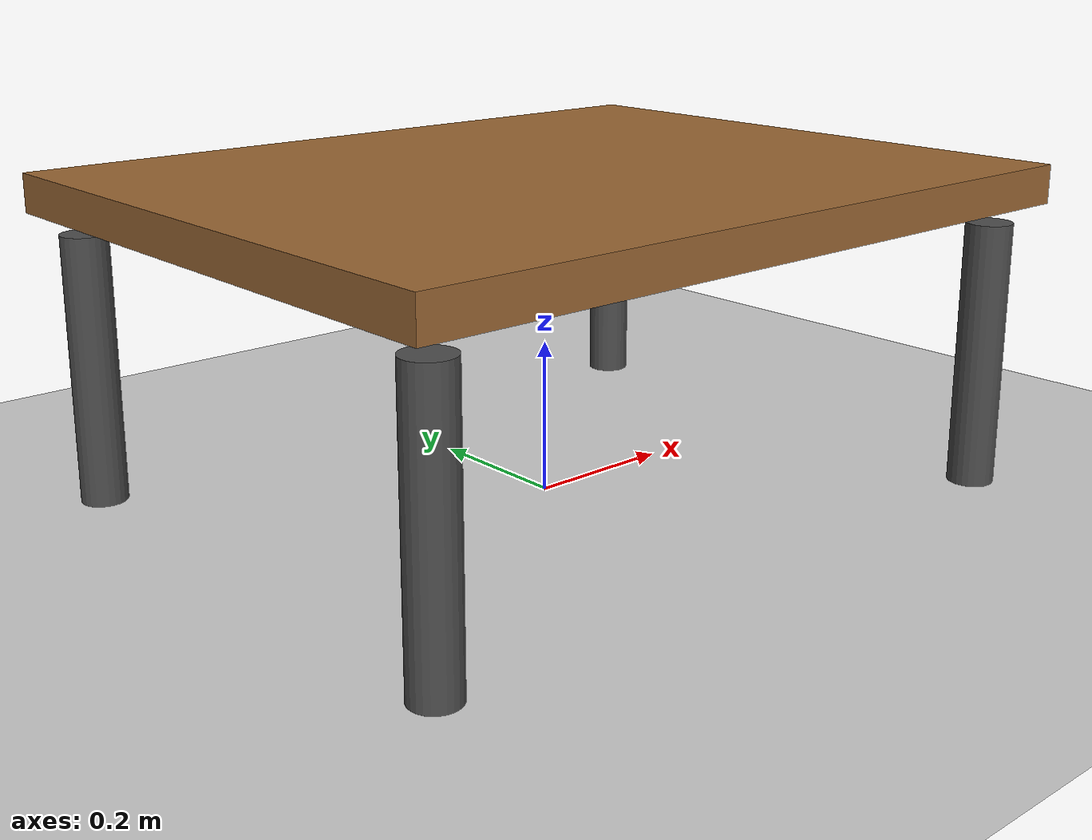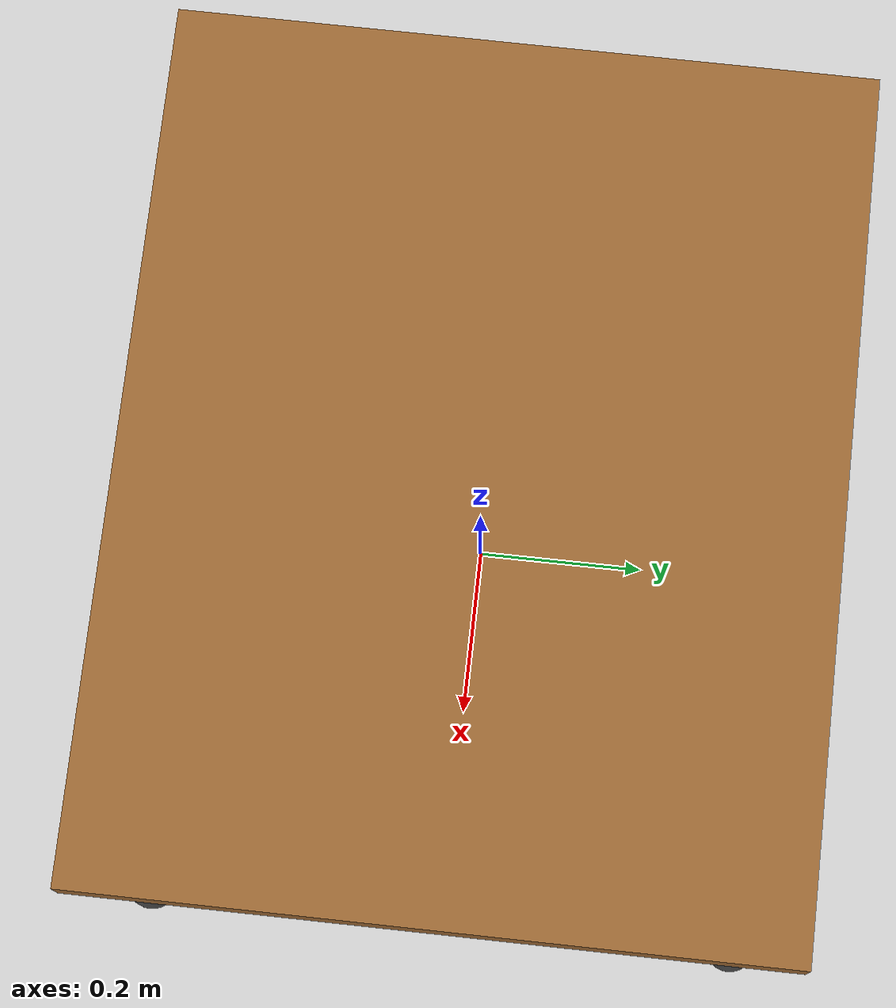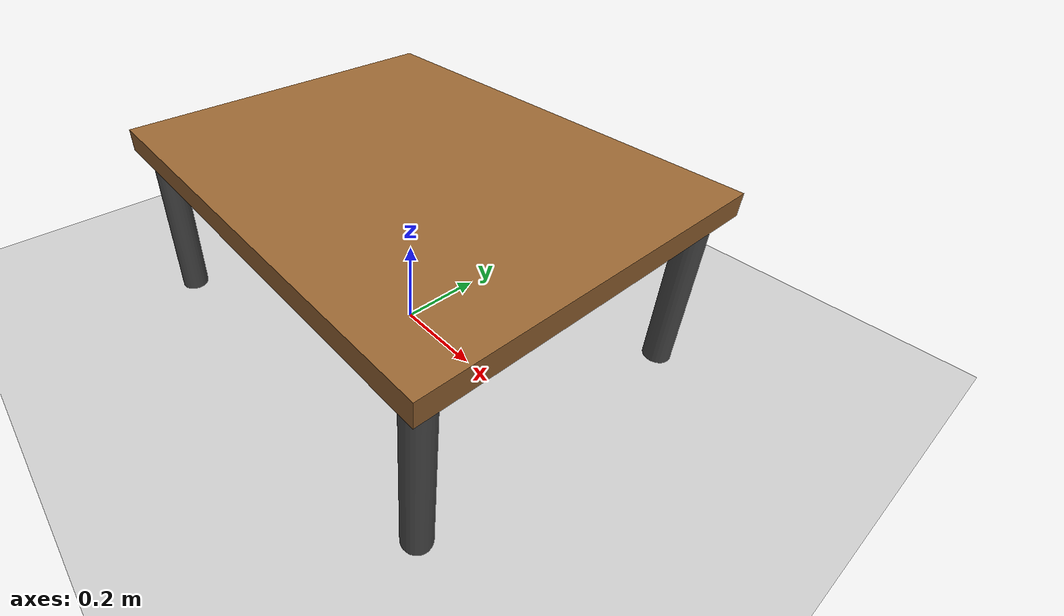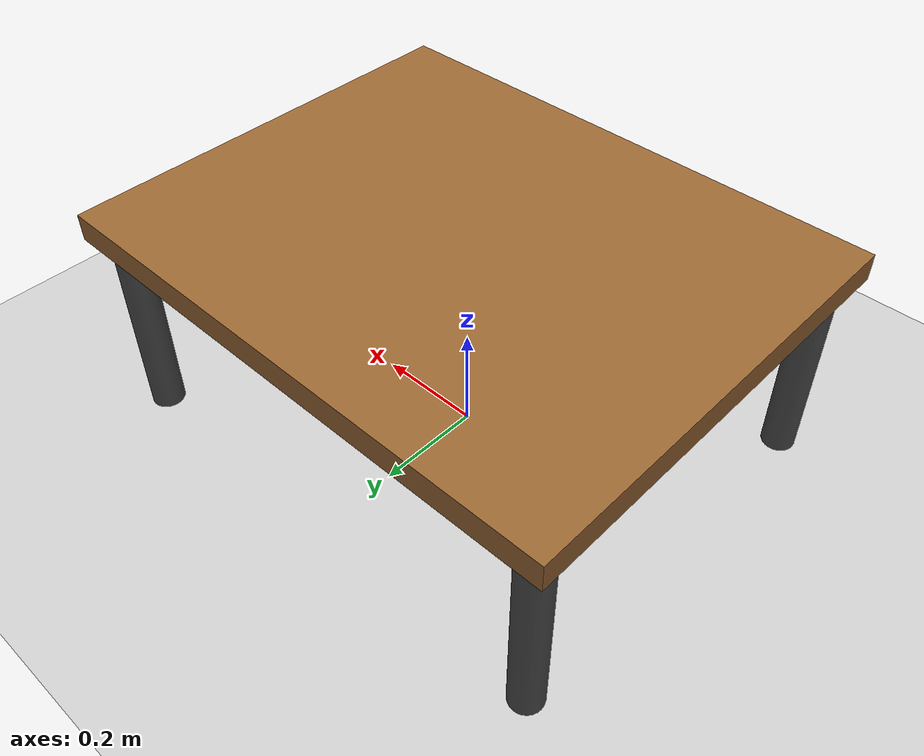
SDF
<?xml version="1.0" ?>
<sdf version="1.6">
  <world name="calibration_world">

    <!-- Physics step size matches controller update rate (100 Hz) -->
    <physics name="default_physics" default="0" type="ode">
      <max_step_size>0.01</max_step_size>
      <real_time_factor>1.0</real_time_factor>
      <real_time_update_rate>100</real_time_update_rate>
    </physics>

    <!-- Plugin for simulating physics -->
    <plugin
      filename="ignition-gazebo-physics-system"
      name="ignition::gazebo::systems::Physics">
    </plugin>

    <!-- Plugin for handling user commands -->
    <plugin
      filename="ignition-gazebo-user-commands-system"
      name="ignition::gazebo::systems::UserCommands">
    </plugin>

    <!-- Plugin for broadcasting scene updates -->
    <plugin
      filename="ignition-gazebo-scene-broadcaster-system"
      name="ignition::gazebo::systems::SceneBroadcaster">
    </plugin>

    <!-- Plugin for handling sensors like the camera -->
    <plugin
      filename="ignition-gazebo-sensors-system"
      name="ignition::gazebo::systems::Sensors">
      <render_engine>ogre2</render_engine>
    </plugin>

    <!-- Plugin for IMU -->
    <plugin
      filename="ignition-gazebo-imu-system"
      name="ignition::gazebo::systems::Imu">
    </plugin>

    <!-- Gravity -->
    <gravity>0.0 0.0 -9.8</gravity>

    <!-- Include a model of the Sun from Fuel -->
    <include>
      <uri>
        https://fuel.ignitionrobotics.org/1.0/OpenRobotics/models/Sun
      </uri>
    </include>

    <!-- Ground Plane -->
    <model name="ground_plane">
      <static>true</static>
      <link name="link">
        <collision name="collision">
          <geometry>
            <plane>
              <normal>0 0 1</normal>
            </plane>
          </geometry>
          <surface>
            <friction>
              <ode>
                <mu>100</mu>
                <mu2>50</mu2>
              </ode>
            </friction>
          </surface>
        </collision>
        <visual name="visual">
          <geometry>
            <plane>
              <normal>0 0 1</normal>
              <size>100 100</size>
            </plane>
          </geometry>
          <material>
            <ambient>0.8 0.8 0.8 1</ambient>
            <diffuse>0.8 0.8 0.8 1</diffuse>
            <specular>0.8 0.8 0.8 1</specular>
          </material>
        </visual>
      </link>
    </model>

    <!-- Calibration Table -->
    <model name="calibration_table">
      <static>true</static>
      <pose>0 0 0 0 0 0</pose>
      <link name="table">

        <!-- Top slab -->
        <collision name="top_collision">
          <pose>0 0 0.4 0 0 0</pose>
          <geometry>
            <box><size>1.0 0.8 0.05</size></box>
          </geometry>
        </collision>
        <visual name="top_visual">
          <pose>0 0 0.4 0 0 0</pose>
          <geometry>
            <box><size>1.0 0.8 0.05</size></box>
          </geometry>
          <material>
            <ambient>0.6 0.4 0.2 1</ambient>
            <diffuse>0.6 0.4 0.2 1</diffuse>
            <specular>0.2 0.2 0.2 1</specular>
          </material>
        </visual>

        <!-- Leg 1: +X +Y corner -->
        <collision name="leg1_collision">
          <pose>0.45 0.35 0.175 0 0 0</pose>
          <geometry>
            <cylinder><radius>0.03</radius><length>0.35</length></cylinder>
          </geometry>
        </collision>
        <visual name="leg1_visual">
          <pose>0.45 0.35 0.175 0 0 0</pose>
          <geometry>
            <cylinder><radius>0.03</radius><length>0.35</length></cylinder>
          </geometry>
          <material>
            <ambient>0.3 0.3 0.3 1</ambient>
            <diffuse>0.3 0.3 0.3 1</diffuse>
          </material>
        </visual>

        <!-- Leg 2: -X +Y corner -->
        <collision name="leg2_collision">
          <pose>-0.45 0.35 0.175 0 0 0</pose>
          <geometry>
            <cylinder><radius>0.03</radius><length>0.35</length></cylinder>
          </geometry>
        </collision>
        <visual name="leg2_visual">
          <pose>-0.45 0.35 0.175 0 0 0</pose>
          <geometry>
            <cylinder><radius>0.03</radius><length>0.35</length></cylinder>
          </geometry>
          <material>
            <ambient>0.3 0.3 0.3 1</ambient>
            <diffuse>0.3 0.3 0.3 1</diffuse>
          </material>
        </visual>

        <!-- Leg 3: +X -Y corner -->
        <collision name="leg3_collision">
          <pose>0.45 -0.35 0.175 0 0 0</pose>
          <geometry>
            <cylinder><radius>0.03</radius><length>0.35</length></cylinder>
          </geometry>
        </collision>
        <visual name="leg3_visual">
          <pose>0.45 -0.35 0.175 0 0 0</pose>
          <geometry>
            <cylinder><radius>0.03</radius><length>0.35</length></cylinder>
          </geometry>
          <material>
            <ambient>0.3 0.3 0.3 1</ambient>
            <diffuse>0.3 0.3 0.3 1</diffuse>
          </material>
        </visual>

        <!-- Leg 4: -X -Y corner -->
        <collision name="leg4_collision">
          <pose>-0.45 -0.35 0.175 0 0 0</pose>
          <geometry>
            <cylinder><radius>0.03</radius><length>0.35</length></cylinder>
          </geometry>
        </collision>
        <visual name="leg4_visual">
          <pose>-0.45 -0.35 0.175 0 0 0</pose>
          <geometry>
            <cylinder><radius>0.03</radius><length>0.35</length></cylinder>
          </geometry>
          <material>
            <ambient>0.3 0.3 0.3 1</ambient>
            <diffuse>0.3 0.3 0.3 1</diffuse>
          </material>
        </visual>

      </link>
    </model>

    <light type="directional" name="fill_opposite">
      <cast_shadows>false</cast_shadows>
      <pose>0 0 6 0 0 0</pose>
      <diffuse>0.45 0.45 0.45 1</diffuse>
      <specular>0.0 0.0 0.0 1</specular>
      <direction>0.5 -0.1 -0.6</direction>
    </light>

    <light type="directional" name="fill_side">
      <cast_shadows>false</cast_shadows>
      <pose>0 0 6 0 0 0</pose>
      <diffuse>0.35 0.35 0.35 1</diffuse>
      <specular>0.0 0.0 0.0 1</specular>
      <direction>0.2 0.9 -0.35</direction>
    </light>

    <!-- Scene properties -->
    <scene>
      <shadows>false</shadows>
      <ambient>0.7 0.7 0.7 1</ambient>
      <background>0.7 0.7 0.7 1</background>
    </scene>

  </world>
</sdf>
